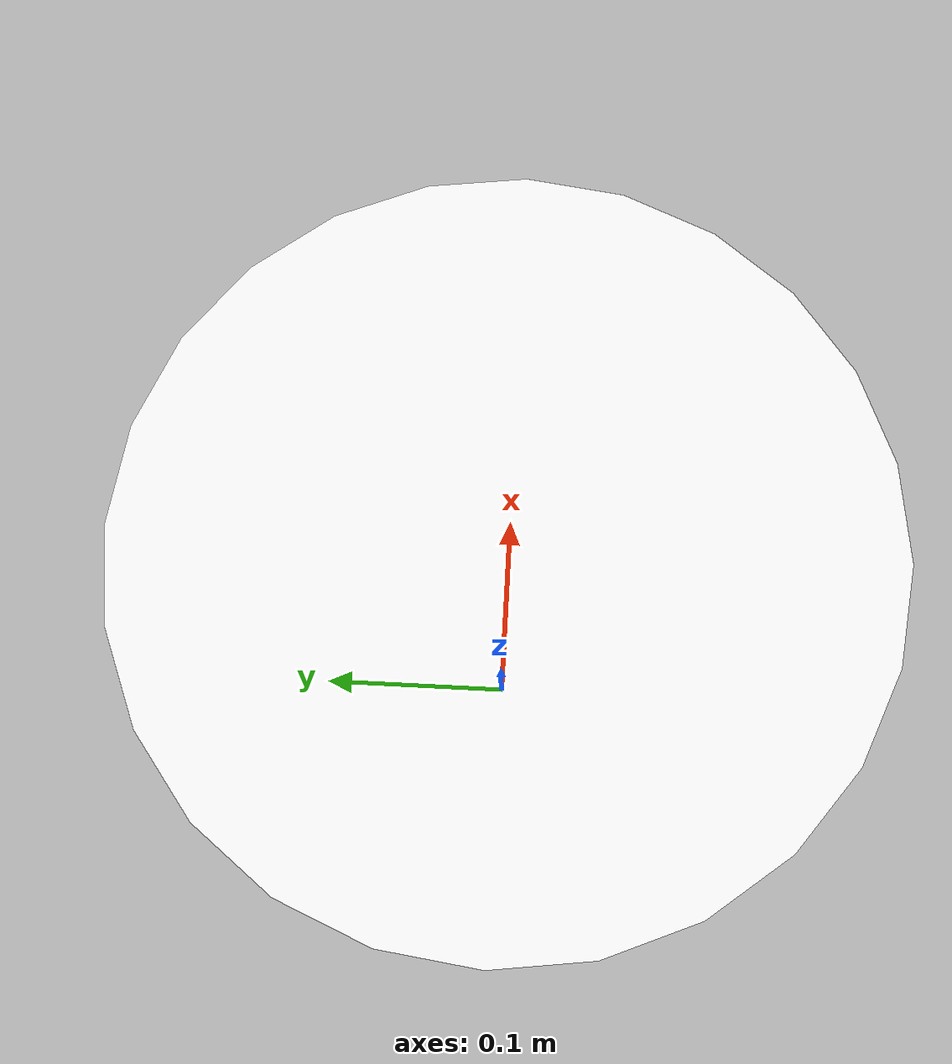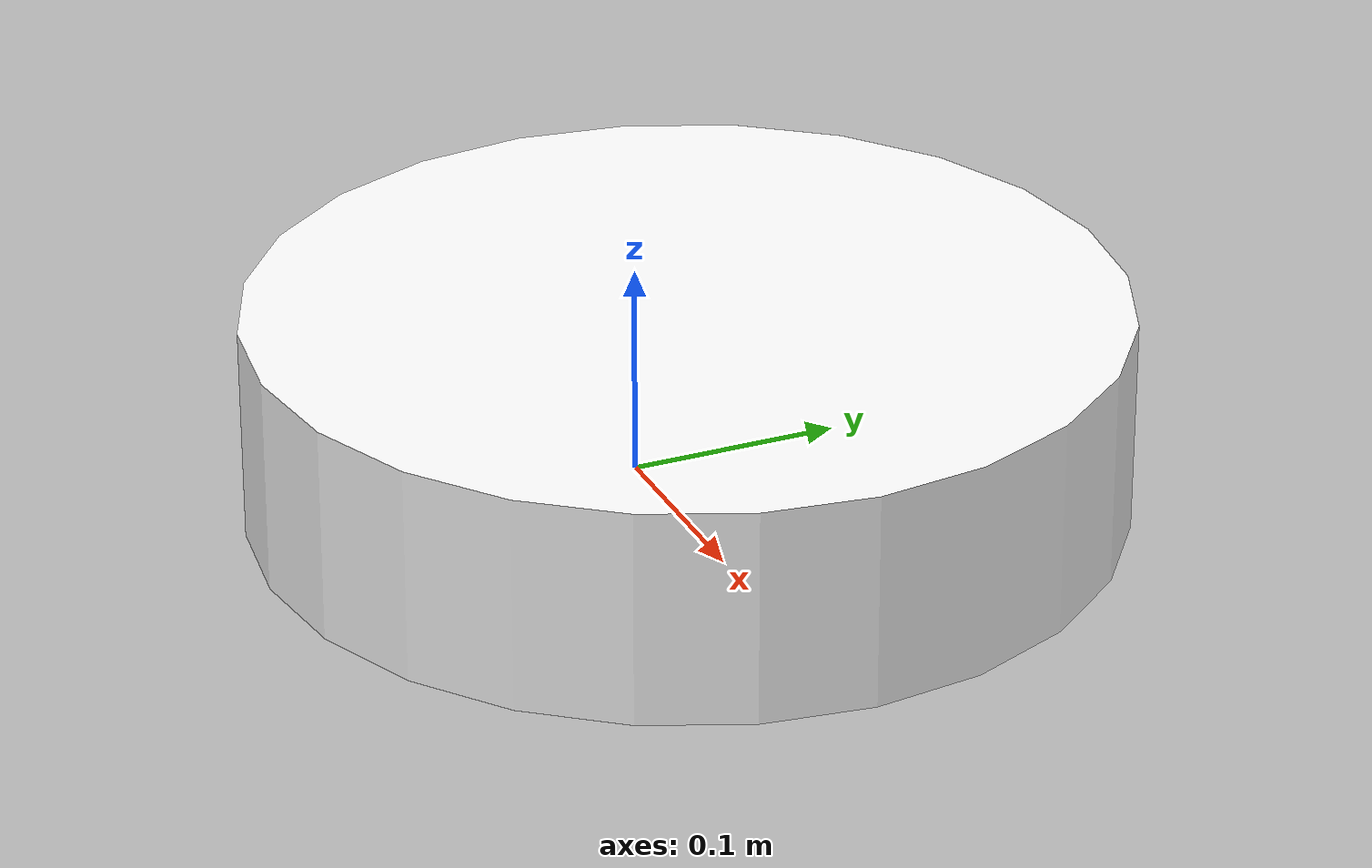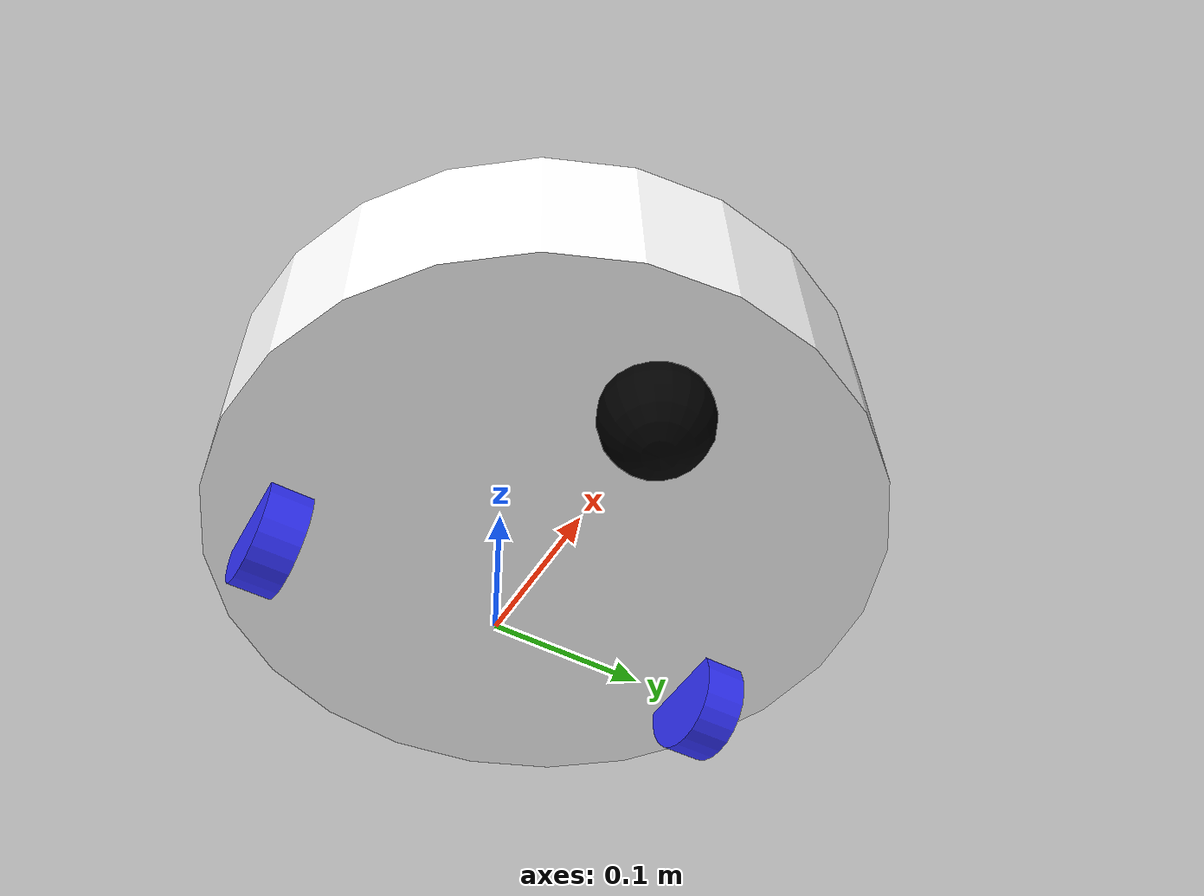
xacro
<?xml version="1.0"?>
<robot xmlns:xacro="http://www.ros.org/wiki/xacro">

    <xacro:include filename="inertial_macros.xacro"/>

    <material name="white">
        <color rgba="1 1 1 1" />
    </material>

    <material name="orange">
        <color rgba="1 0.3 0.1 1"/>
    </material>

    <material name="blue">
        <color rgba="0.2 0.2 1 1"/>
    </material>

    <material name="black">
        <color rgba="0 0 0 1"/>
    </material>
    <material name="red">
        <color rgba="1 0 0 1"/>
    </material>

    <!-- BASE LINK -->

    <link name="base_link">

    </link>

    <!-- BASE_FOOTPRINT LINK -->

    <joint name="base_footprint_joint" type="fixed">
        <parent link="base_link"/>
        <child link="base_footprint"/>
        <origin xyz="0 0 0" rpy="0 0 0"/>
    </joint>

    <link name="base_footprint">
    </link>
    <!-- CHASSIC LINK-->

    <joint name="chassis_joint" type="fixed">
        <parent link="base_link"/>
        <child link="chassis"/>
        <origin xyz="-0.06 0 0"/>
    </joint>

    <link name="chassis">
        <visual>
            <origin xyz="0.12 0 0.06"/>
            <geometry>
                <cylinder radius="0.2" length="0.1"/>
            </geometry>
            <material name="white"/>
        </visual>
        <collision>
            <origin xyz="0.12 0 0.06"/>
            <geometry>
                <cylinder radius="0.225" length="0.1"/>
            </geometry>
        </collision>
        <xacro:inertial_cylinder mass="5.0" radius="0.225" length="0.1">
            <origin xyz="0.12 0 0.06" rpy="0 0 0"/>
        </xacro:inertial_cylinder>
    </link>
    <gazebo reference="chassis">
        <material>Gazebo/White</material>
    </gazebo>
    <!-- LEFT WHEEL LINK -banh trai-->

    <joint name="left_wheel_joint" type="continuous">
        <parent link="base_link"/>
        <child link="left_wheel"/>
        <origin xyz="0 0.146 0" rpy="-${pi/2} 0 0" />
        <!-- XYZ la vi tri banh xe cach tam base link, xoay cylinder banh1 goc -pi/2(90do)-->
        <axis xyz="0 0 1"/>
        <!-- axis "1" va "-1" laf truc banh xe chuyen dong tien-lui quanh truc z-->
    </joint>

    <link name="left_wheel">
        <visual>
            <geometry>
                <cylinder radius="0.0325" length="0.026"/>
            </geometry>
            <material name="blue"/>
        </visual>
        <collision>
            <geometry>
                <cylinder radius="0.0325" length="0.026"/>
            </geometry>
        </collision>
        <xacro:inertial_cylinder mass="0.1" length="0.026" radius="0.0325">
            <origin xyz="0 0 0" rpy="0 0 0"/>
        </xacro:inertial_cylinder>
    </link>
    <gazebo reference="left_wheel">
        <material>Gazebo/Blue</material>
    </gazebo>
    <!-- RIGHT WHEEL LINK - banh phai-->

    <joint name="right_wheel_joint" type="continuous">
        <parent link="base_link"/>
        <child link="right_wheel"/>
        <origin xyz="0 -0.146 0" rpy="${pi/2} 0 0" />
        <axis xyz="0 0 -1"/>
    </joint>

    <link name="right_wheel">
        <visual>
            <geometry>
                <cylinder radius="0.0325" length="0.026"/>
            </geometry>
            <material name="blue"/>
        </visual>
        <collision>
            <geometry>
                <cylinder radius="0.0325" length="0.026"/>
            </geometry>
        </collision>
        <xacro:inertial_cylinder mass="0.1" length="0.026" radius="0.0325">
            <origin xyz="0 0 0" rpy="0 0 0"/>
        </xacro:inertial_cylinder>

    </link>
    <gazebo reference="right_wheel">
        <material>Gazebo/Blue</material>
    </gazebo>
    <!-- CASTER WHEEL LINK - banh da huong-->

    <joint name="caster_wheel_joint" type="fixed">
        <parent link="chassis"/>
        <child link="caster_wheel"/>
        <origin xyz="0.24 0 0"/>
    </joint>

    <link name="caster_wheel">
        <visual>
            <geometry>
                <sphere radius="0.0325"/>
            </geometry>
            <material name="black"/>
        </visual>
        <collision>
            <geometry>
                <sphere radius="0.0325"/>
            </geometry>
        </collision>
        <xacro:inertial_sphere mass="0.2" radius="0.0325">
            <origin xyz="0 0 0" rpy="0 0 0"/>
        </xacro:inertial_sphere>
    </link>
    <gazebo reference="caster_wheel">
        <material>Gazebo/Black</material>
        <mu1 value="0.001"/>
        <mu2 value="0.001"/>
    </gazebo>

</robot>
